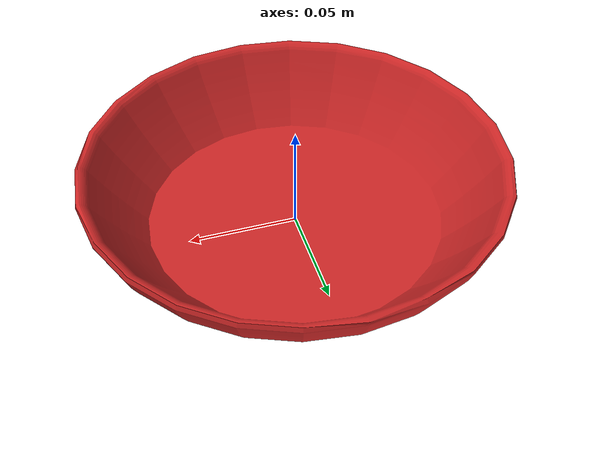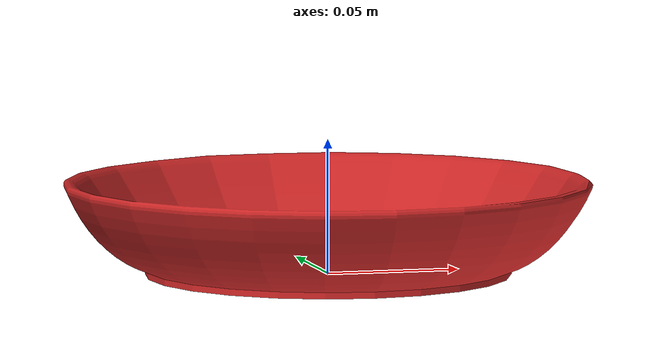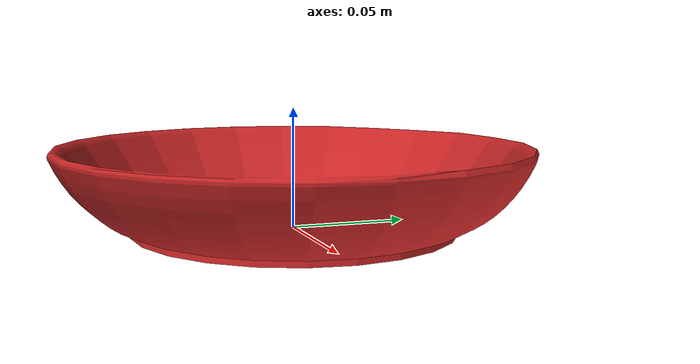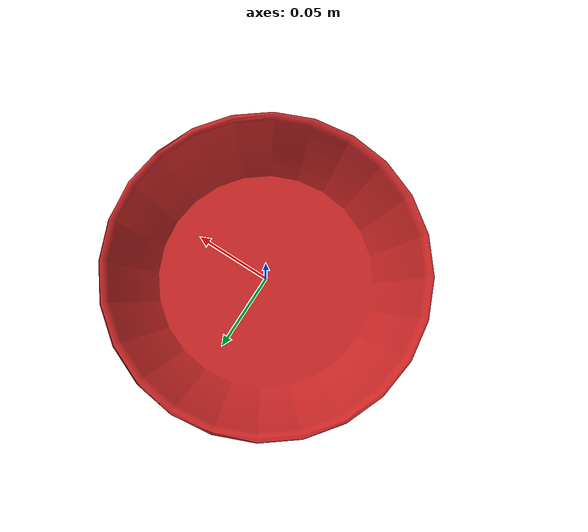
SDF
<?xml version="1.0" ?>
<sdf version="1.5">
  <model name="bowl">
    <link name="link">
      <inertial>
      <pose>0 0 0.0175 0 0 0</pose>
        <mass>0.1</mass>
	  <inertia>
	    <ixx>0.000250308</ixx>
	    <ixy>0.0</ixy>
	    <ixz>0.0</ixz>
	    <iyy>0.000250308</iyy>
	    <iyz>0.0</iyz>
	    <izz>0.0004802</izz>
	  </inertia>
      </inertial>
      <collision name="collision">
        <pose>0 0 0.0175 0 0 0</pose>
        <geometry>
          <cylinder>
            <radius>0.098</radius>
            <length>0.035</length>
          </cylinder>
        </geometry>
      </collision>
      <visual name="visual">
        <geometry>
          <mesh>
            <uri>model://bowl/meshes/bowl.dae</uri>
          </mesh>
        </geometry>
        <material>
          <script>
            <uri>file://media/materials/scripts/gazebo.material</uri>
            <name>Gazebo/Red</name>
          </script>
        </material>
      </visual>
    </link>
  </model>
</sdf>
